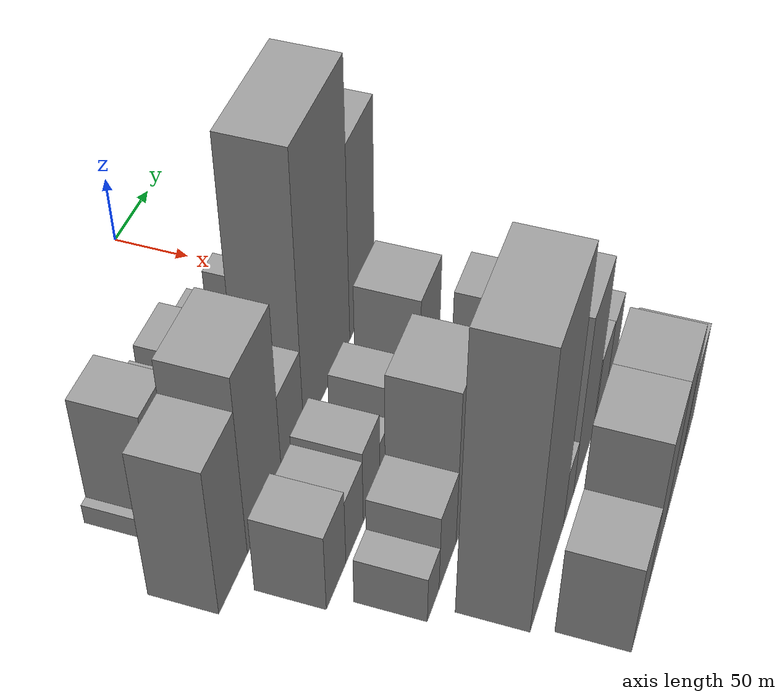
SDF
<sdf version="1.6">
 <world name="default">
  <model name="building_19">
   <static>1</static>
   <pose>100.0000 -210.8324 0 0.000000 0.000000 0.000000</pose>
   <link name="link">
    <pose>0 0 7.50 0 0 0</pose>
    <collision name="collision"><geometry><box><size>40.0000 6.0879 15.0000</size></box></geometry></collision>
    <visual name="visual">
     <cast_shadows>0</cast_shadows>
     <geometry><box><size>40.0000 6.0879 15.0000</size></box></geometry>
     <material>
      <script>
       <uri>model://grey_wall/materials/scripts</uri>
       <uri>model://grey_wall/materials/textures</uri>
       <name>vrc/grey_wall</name>
      </script>
     </material>
    </visual>
   </link>
  </model>
  <model name="building_20">
   <static>1</static>
   <pose>100.0000 -191.2011 0 0.000000 0.000000 0.000000</pose>
   <link name="link">
    <pose>0 0 46.50 0 0 0</pose>
    <collision name="collision"><geometry><box><size>40.0000 33.1748 93.0000</size></box></geometry></collision>
    <visual name="visual">
     <cast_shadows>0</cast_shadows>
     <geometry><box><size>40.0000 33.1748 93.0000</size></box></geometry>
     <material>
      <script>
       <uri>model://grey_wall/materials/scripts</uri>
       <uri>model://grey_wall/materials/textures</uri>
       <name>vrc/grey_wall</name>
      </script>
     </material>
    </visual>
   </link>
  </model>
  <model name="building_21">
   <static>1</static>
   <pose>100.0000 -155.3330 0 0.000000 0.000000 0.000000</pose>
   <link name="link">
    <pose>0 0 27.00 0 0 0</pose>
    <collision name="collision"><geometry><box><size>40.0000 30.5614 54.0000</size></box></geometry></collision>
    <visual name="visual">
     <cast_shadows>0</cast_shadows>
     <geometry><box><size>40.0000 30.5614 54.0000</size></box></geometry>
     <material>
      <script>
       <uri>model://grey_wall/materials/scripts</uri>
       <uri>model://grey_wall/materials/textures</uri>
       <name>vrc/grey_wall</name>
      </script>
     </material>
    </visual>
   </link>
  </model>
  <model name="building_22">
   <static>1</static>
   <pose>100.0000 -116.2851 0 0.000000 0.000000 0.000000</pose>
   <link name="link">
    <pose>0 0 30.00 0 0 0</pose>
    <collision name="collision"><geometry><box><size>40.0000 35.5343 60.0000</size></box></geometry></collision>
    <visual name="visual">
     <cast_shadows>0</cast_shadows>
     <geometry><box><size>40.0000 35.5343 60.0000</size></box></geometry>
     <material>
      <script>
       <uri>model://grey_wall/materials/scripts</uri>
       <uri>model://grey_wall/materials/textures</uri>
       <name>vrc/grey_wall</name>
      </script>
     </material>
    </visual>
   </link>
  </model>
  <model name="building_23">
   <static>1</static>
   <pose>100.0000 -89.9354 0 0.000000 0.000000 0.000000</pose>
   <link name="link">
    <pose>0 0 13.50 0 0 0</pose>
    <collision name="collision"><geometry><box><size>40.0000 11.1652 27.0000</size></box></geometry></collision>
    <visual name="visual">
     <cast_shadows>0</cast_shadows>
     <geometry><box><size>40.0000 11.1652 27.0000</size></box></geometry>
     <material>
      <script>
       <uri>model://grey_wall/materials/scripts</uri>
       <uri>model://grey_wall/materials/textures</uri>
       <name>vrc/grey_wall</name>
      </script>
     </material>
    </visual>
   </link>
  </model>
  <model name="building_24">
   <static>1</static>
   <pose>100.0000 -73.9870 0 0.000000 0.000000 0.000000</pose>
   <link name="link">
    <pose>0 0 19.50 0 0 0</pose>
    <collision name="collision"><geometry><box><size>40.0000 20.7316 39.0000</size></box></geometry></collision>
    <visual name="visual">
     <cast_shadows>0</cast_shadows>
     <geometry><box><size>40.0000 20.7316 39.0000</size></box></geometry>
     <material>
      <script>
       <uri>model://grey_wall/materials/scripts</uri>
       <uri>model://grey_wall/materials/textures</uri>
       <name>vrc/grey_wall</name>
      </script>
     </material>
    </visual>
   </link>
  </model>
  <model name="building_25">
   <static>1</static>
   <pose>100.0000 -50.6475 0 0.000000 0.000000 0.000000</pose>
   <link name="link">
    <pose>0 0 9.00 0 0 0</pose>
    <collision name="collision"><geometry><box><size>40.0000 7.9473 18.0000</size></box></geometry></collision>
    <visual name="visual">
     <cast_shadows>0</cast_shadows>
     <geometry><box><size>40.0000 7.9473 18.0000</size></box></geometry>
     <material>
      <script>
       <uri>model://grey_wall/materials/scripts</uri>
       <uri>model://grey_wall/materials/textures</uri>
       <name>vrc/grey_wall</name>
      </script>
     </material>
    </visual>
   </link>
  </model>
  <model name="building_26">
   <static>1</static>
   <pose>100.0000 -33.1180 0 0.000000 0.000000 0.000000</pose>
   <link name="link">
    <pose>0 0 16.50 0 0 0</pose>
    <collision name="collision"><geometry><box><size>40.0000 17.1118 33.0000</size></box></geometry></collision>
    <visual name="visual">
     <cast_shadows>0</cast_shadows>
     <geometry><box><size>40.0000 17.1118 33.0000</size></box></geometry>
     <material>
      <script>
       <uri>model://grey_wall/materials/scripts</uri>
       <uri>model://grey_wall/materials/textures</uri>
       <name>vrc/grey_wall</name>
      </script>
     </material>
    </visual>
   </link>
  </model>
  <model name="building_68">
   <static>1</static>
   <pose>152.0000 -226.4632 0 0.000000 0.000000 0.000000</pose>
   <link name="link">
    <pose>0 0 57.00 0 0 0</pose>
    <collision name="collision"><geometry><box><size>40.0000 40.4341 114.0000</size></box></geometry></collision>
    <visual name="visual">
     <cast_shadows>0</cast_shadows>
     <geometry><box><size>40.0000 40.4341 114.0000</size></box></geometry>
     <material>
      <script>
       <uri>model://grey_wall/materials/scripts</uri>
       <uri>model://grey_wall/materials/textures</uri>
       <name>vrc/grey_wall</name>
      </script>
     </material>
    </visual>
   </link>
  </model>
  <model name="building_69">
   <static>1</static>
   <pose>152.0000 -180.0314 0 0.000000 0.000000 0.000000</pose>
   <link name="link">
    <pose>0 0 69.00 0 0 0</pose>
    <collision name="collision"><geometry><box><size>40.0000 52.4296 138.0000</size></box></geometry></collision>
    <visual name="visual">
     <cast_shadows>0</cast_shadows>
     <geometry><box><size>40.0000 52.4296 138.0000</size></box></geometry>
     <material>
      <script>
       <uri>model://grey_wall/materials/scripts</uri>
       <uri>model://grey_wall/materials/textures</uri>
       <name>vrc/grey_wall</name>
      </script>
     </material>
    </visual>
   </link>
  </model>
  <model name="building_70">
   <static>1</static>
   <pose>152.0000 -136.0870 0 0.000000 0.000000 0.000000</pose>
   <link name="link">
    <pose>0 0 34.50 0 0 0</pose>
    <collision name="collision"><geometry><box><size>40.0000 35.4592 69.0000</size></box></geometry></collision>
    <visual name="visual">
     <cast_shadows>0</cast_shadows>
     <geometry><box><size>40.0000 35.4592 69.0000</size></box></geometry>
     <material>
      <script>
       <uri>model://grey_wall/materials/scripts</uri>
       <uri>model://grey_wall/materials/textures</uri>
       <name>vrc/grey_wall</name>
      </script>
     </material>
    </visual>
   </link>
  </model>
  <model name="building_71">
   <static>1</static>
   <pose>152.0000 -78.3478 0 0.000000 0.000000 0.000000</pose>
   <link name="link">
    <pose>0 0 105.00 0 0 0</pose>
    <collision name="collision"><geometry><box><size>40.0000 80.0192 210.0000</size></box></geometry></collision>
    <visual name="visual">
     <cast_shadows>0</cast_shadows>
     <geometry><box><size>40.0000 80.0192 210.0000</size></box></geometry>
     <material>
      <script>
       <uri>model://grey_wall/materials/scripts</uri>
       <uri>model://grey_wall/materials/textures</uri>
       <name>vrc/grey_wall</name>
      </script>
     </material>
    </visual>
   </link>
  </model>
  <model name="building_72">
   <static>1</static>
   <pose>152.0000 -14.9085 0 0.000000 0.000000 0.000000</pose>
   <link name="link">
    <pose>0 0 75.00 0 0 0</pose>
    <collision name="collision"><geometry><box><size>40.0000 46.8594 150.0000</size></box></geometry></collision>
    <visual name="visual">
     <cast_shadows>0</cast_shadows>
     <geometry><box><size>40.0000 46.8594 150.0000</size></box></geometry>
     <material>
      <script>
       <uri>model://grey_wall/materials/scripts</uri>
       <uri>model://grey_wall/materials/textures</uri>
       <name>vrc/grey_wall</name>
      </script>
     </material>
    </visual>
   </link>
  </model>
  <model name="building_112">
   <static>1</static>
   <pose>204.0000 -211.2936 0 0.000000 0.000000 0.000000</pose>
   <link name="link">
    <pose>0 0 30.00 0 0 0</pose>
    <collision name="collision"><geometry><box><size>40.0000 31.0286 60.0000</size></box></geometry></collision>
    <visual name="visual">
     <cast_shadows>0</cast_shadows>
     <geometry><box><size>40.0000 31.0286 60.0000</size></box></geometry>
     <material>
      <script>
       <uri>model://grey_wall/materials/scripts</uri>
       <uri>model://grey_wall/materials/textures</uri>
       <name>vrc/grey_wall</name>
      </script>
     </material>
    </visual>
   </link>
  </model>
  <model name="building_113">
   <static>1</static>
   <pose>204.0000 -181.3317 0 0.000000 0.000000 0.000000</pose>
   <link name="link">
    <pose>0 0 25.50 0 0 0</pose>
    <collision name="collision"><geometry><box><size>40.0000 28.8951 51.0000</size></box></geometry></collision>
    <visual name="visual">
     <cast_shadows>0</cast_shadows>
     <geometry><box><size>40.0000 28.8951 51.0000</size></box></geometry>
     <material>
      <script>
       <uri>model://grey_wall/materials/scripts</uri>
       <uri>model://grey_wall/materials/textures</uri>
       <name>vrc/grey_wall</name>
      </script>
     </material>
    </visual>
   </link>
  </model>
  <model name="building_114">
   <static>1</static>
   <pose>204.0000 -152.5142 0 0.000000 0.000000 0.000000</pose>
   <link name="link">
    <pose>0 0 28.50 0 0 0</pose>
    <collision name="collision"><geometry><box><size>40.0000 28.7399 57.0000</size></box></geometry></collision>
    <visual name="visual">
     <cast_shadows>0</cast_shadows>
     <geometry><box><size>40.0000 28.7399 57.0000</size></box></geometry>
     <material>
      <script>
       <uri>model://grey_wall/materials/scripts</uri>
       <uri>model://grey_wall/materials/textures</uri>
       <name>vrc/grey_wall</name>
      </script>
     </material>
    </visual>
   </link>
  </model>
  <model name="building_115">
   <static>1</static>
   <pose>204.0000 -128.4419 0 0.000000 0.000000 0.000000</pose>
   <link name="link">
    <pose>0 0 16.50 0 0 0</pose>
    <collision name="collision"><geometry><box><size>40.0000 19.4047 33.0000</size></box></geometry></collision>
    <visual name="visual">
     <cast_shadows>0</cast_shadows>
     <geometry><box><size>40.0000 19.4047 33.0000</size></box></geometry>
     <material>
      <script>
       <uri>model://grey_wall/materials/scripts</uri>
       <uri>model://grey_wall/materials/textures</uri>
       <name>vrc/grey_wall</name>
      </script>
     </material>
    </visual>
   </link>
  </model>
  <model name="building_116">
   <static>1</static>
   <pose>204.0000 -95.3311 0 0.000000 0.000000 0.000000</pose>
   <link name="link">
    <pose>0 0 22.50 0 0 0</pose>
    <collision name="collision"><geometry><box><size>40.0000 26.8168 45.0000</size></box></geometry></collision>
    <visual name="visual">
     <cast_shadows>0</cast_shadows>
     <geometry><box><size>40.0000 26.8168 45.0000</size></box></geometry>
     <material>
      <script>
       <uri>model://grey_wall/materials/scripts</uri>
       <uri>model://grey_wall/materials/textures</uri>
       <name>vrc/grey_wall</name>
      </script>
     </material>
    </visual>
   </link>
  </model>
  <model name="building_117">
   <static>1</static>
   <pose>204.0000 -76.4232 0 0.000000 0.000000 0.000000</pose>
   <link name="link">
    <pose>0 0 12.00 0 0 0</pose>
    <collision name="collision"><geometry><box><size>40.0000 10.9991 24.0000</size></box></geometry></collision>
    <visual name="visual">
     <cast_shadows>0</cast_shadows>
     <geometry><box><size>40.0000 10.9991 24.0000</size></box></geometry>
     <material>
      <script>
       <uri>model://grey_wall/materials/scripts</uri>
       <uri>model://grey_wall/materials/textures</uri>
       <name>vrc/grey_wall</name>
      </script>
     </material>
    </visual>
   </link>
  </model>
  <model name="building_118">
   <static>1</static>
   <pose>204.0000 -43.9648 0 0.000000 0.000000 0.000000</pose>
   <link name="link">
    <pose>0 0 36.00 0 0 0</pose>
    <collision name="collision"><geometry><box><size>40.0000 39.9176 72.0000</size></box></geometry></collision>
    <visual name="visual">
     <cast_shadows>0</cast_shadows>
     <geometry><box><size>40.0000 39.9176 72.0000</size></box></geometry>
     <material>
      <script>
       <uri>model://grey_wall/materials/scripts</uri>
       <uri>model://grey_wall/materials/textures</uri>
       <name>vrc/grey_wall</name>
      </script>
     </material>
    </visual>
   </link>
  </model>
  <model name="building_163">
   <static>1</static>
   <pose>256.0000 -207.3540 0 0.000000 0.000000 0.000000</pose>
   <link name="link">
    <pose>0 0 18.00 0 0 0</pose>
    <collision name="collision"><geometry><box><size>40.0000 20.7947 36.0000</size></box></geometry></collision>
    <visual name="visual">
     <cast_shadows>0</cast_shadows>
     <geometry><box><size>40.0000 20.7947 36.0000</size></box></geometry>
     <material>
      <script>
       <uri>model://grey_wall/materials/scripts</uri>
       <uri>model://grey_wall/materials/textures</uri>
       <name>vrc/grey_wall</name>
      </script>
     </material>
    </visual>
   </link>
  </model>
  <model name="building_164">
   <static>1</static>
   <pose>256.0000 -181.2437 0 0.000000 0.000000 0.000000</pose>
   <link name="link">
    <pose>0 0 30.00 0 0 0</pose>
    <collision name="collision"><geometry><box><size>40.0000 31.4259 60.0000</size></box></geometry></collision>
    <visual name="visual">
     <cast_shadows>0</cast_shadows>
     <geometry><box><size>40.0000 31.4259 60.0000</size></box></geometry>
     <material>
      <script>
       <uri>model://grey_wall/materials/scripts</uri>
       <uri>model://grey_wall/materials/textures</uri>
       <name>vrc/grey_wall</name>
      </script>
     </material>
    </visual>
   </link>
  </model>
  <model name="building_165">
   <static>1</static>
   <pose>256.0000 -143.0089 0 0.000000 0.000000 0.000000</pose>
   <link name="link">
    <pose>0 0 60.00 0 0 0</pose>
    <collision name="collision"><geometry><box><size>40.0000 45.0437 120.0000</size></box></geometry></collision>
    <visual name="visual">
     <cast_shadows>0</cast_shadows>
     <geometry><box><size>40.0000 45.0437 120.0000</size></box></geometry>
     <material>
      <script>
       <uri>model://grey_wall/materials/scripts</uri>
       <uri>model://grey_wall/materials/textures</uri>
       <name>vrc/grey_wall</name>
      </script>
     </material>
    </visual>
   </link>
  </model>
  <model name="building_166">
   <static>1</static>
   <pose>256.0000 -111.8336 0 0.000000 0.000000 0.000000</pose>
   <link name="link">
    <pose>0 0 16.50 0 0 0</pose>
    <collision name="collision"><geometry><box><size>40.0000 17.3068 33.0000</size></box></geometry></collision>
    <visual name="visual">
     <cast_shadows>0</cast_shadows>
     <geometry><box><size>40.0000 17.3068 33.0000</size></box></geometry>
     <material>
      <script>
       <uri>model://grey_wall/materials/scripts</uri>
       <uri>model://grey_wall/materials/textures</uri>
       <name>vrc/grey_wall</name>
      </script>
     </material>
    </visual>
   </link>
  </model>
  <model name="building_167">
   <static>1</static>
   <pose>256.0000 -88.0276 0 0.000000 0.000000 0.000000</pose>
   <link name="link">
    <pose>0 0 30.00 0 0 0</pose>
    <collision name="collision"><geometry><box><size>40.0000 30.3052 60.0000</size></box></geometry></collision>
    <visual name="visual">
     <cast_shadows>0</cast_shadows>
     <geometry><box><size>40.0000 30.3052 60.0000</size></box></geometry>
     <material>
      <script>
       <uri>model://grey_wall/materials/scripts</uri>
       <uri>model://grey_wall/materials/textures</uri>
       <name>vrc/grey_wall</name>
      </script>
     </material>
    </visual>
   </link>
  </model>
  <model name="building_168">
   <static>1</static>
   <pose>256.0000 -61.0045 0 0.000000 0.000000 0.000000</pose>
   <link name="link">
    <pose>0 0 22.50 0 0 0</pose>
    <collision name="collision"><geometry><box><size>40.0000 23.7411 45.0000</size></box></geometry></collision>
    <visual name="visual">
     <cast_shadows>0</cast_shadows>
     <geometry><box><size>40.0000 23.7411 45.0000</size></box></geometry>
     <material>
      <script>
       <uri>model://grey_wall/materials/scripts</uri>
       <uri>model://grey_wall/materials/textures</uri>
       <name>vrc/grey_wall</name>
      </script>
     </material>
    </visual>
   </link>
  </model>
  <model name="building_169">
   <static>1</static>
   <pose>256.0000 -21.3351 0 0.000000 0.000000 0.000000</pose>
   <link name="link">
    <pose>0 0 30.00 0 0 0</pose>
    <collision name="collision"><geometry><box><size>40.0000 35.5977 60.0000</size></box></geometry></collision>
    <visual name="visual">
     <cast_shadows>0</cast_shadows>
     <geometry><box><size>40.0000 35.5977 60.0000</size></box></geometry>
     <material>
      <script>
       <uri>model://grey_wall/materials/scripts</uri>
       <uri>model://grey_wall/materials/textures</uri>
       <name>vrc/grey_wall</name>
      </script>
     </material>
    </visual>
   </link>
  </model>
  <model name="building_214">
   <static>1</static>
   <pose>308.0000 -172.0735 0 0.000000 0.000000 0.000000</pose>
   <link name="link">
    <pose>0 0 105.00 0 0 0</pose>
    <collision name="collision"><geometry><box><size>40.0000 70.9552 210.0000</size></box></geometry></collision>
    <visual name="visual">
     <cast_shadows>0</cast_shadows>
     <geometry><box><size>40.0000 70.9552 210.0000</size></box></geometry>
     <material>
      <script>
       <uri>model://grey_wall/materials/scripts</uri>
       <uri>model://grey_wall/materials/textures</uri>
       <name>vrc/grey_wall</name>
      </script>
     </material>
    </visual>
   </link>
  </model>
  <model name="building_215">
   <static>1</static>
   <pose>308.0000 -125.0326 0 0.000000 0.000000 0.000000</pose>
   <link name="link">
    <pose>0 0 22.50 0 0 0</pose>
    <collision name="collision"><geometry><box><size>40.0000 23.1267 45.0000</size></box></geometry></collision>
    <visual name="visual">
     <cast_shadows>0</cast_shadows>
     <geometry><box><size>40.0000 23.1267 45.0000</size></box></geometry>
     <material>
      <script>
       <uri>model://grey_wall/materials/scripts</uri>
       <uri>model://grey_wall/materials/textures</uri>
       <name>vrc/grey_wall</name>
      </script>
     </material>
    </visual>
   </link>
  </model>
  <model name="building_216">
   <static>1</static>
   <pose>308.0000 -89.7167 0 0.000000 0.000000 0.000000</pose>
   <link name="link">
    <pose>0 0 69.00 0 0 0</pose>
    <collision name="collision"><geometry><box><size>40.0000 47.5051 138.0000</size></box></geometry></collision>
    <visual name="visual">
     <cast_shadows>0</cast_shadows>
     <geometry><box><size>40.0000 47.5051 138.0000</size></box></geometry>
     <material>
      <script>
       <uri>model://grey_wall/materials/scripts</uri>
       <uri>model://grey_wall/materials/textures</uri>
       <name>vrc/grey_wall</name>
      </script>
     </material>
    </visual>
   </link>
  </model>
  <model name="building_217">
   <static>1</static>
   <pose>308.0000 -46.1978 0 0.000000 0.000000 0.000000</pose>
   <link name="link">
    <pose>0 0 28.50 0 0 0</pose>
    <collision name="collision"><geometry><box><size>40.0000 31.5326 57.0000</size></box></geometry></collision>
    <visual name="visual">
     <cast_shadows>0</cast_shadows>
     <geometry><box><size>40.0000 31.5326 57.0000</size></box></geometry>
     <material>
      <script>
       <uri>model://grey_wall/materials/scripts</uri>
       <uri>model://grey_wall/materials/textures</uri>
       <name>vrc/grey_wall</name>
      </script>
     </material>
    </visual>
   </link>
  </model>
  <model name="building_218">
   <static>1</static>
   <pose>308.0000 -16.6651 0 0.000000 0.000000 0.000000</pose>
   <link name="link">
    <pose>0 0 27.00 0 0 0</pose>
    <collision name="collision"><geometry><box><size>40.0000 27.5329 54.0000</size></box></geometry></collision>
    <visual name="visual">
     <cast_shadows>0</cast_shadows>
     <geometry><box><size>40.0000 27.5329 54.0000</size></box></geometry>
     <material>
      <script>
       <uri>model://grey_wall/materials/scripts</uri>
       <uri>model://grey_wall/materials/textures</uri>
       <name>vrc/grey_wall</name>
      </script>
     </material>
    </visual>
   </link>
  </model>
  <model name="building_258">
   <static>1</static>
   <pose>360.0000 -183.2799 0 0.000000 0.000000 0.000000</pose>
   <link name="link">
    <pose>0 0 34.50 0 0 0</pose>
    <collision name="collision"><geometry><box><size>40.0000 40.0844 69.0000</size></box></geometry></collision>
    <visual name="visual">
     <cast_shadows>0</cast_shadows>
     <geometry><box><size>40.0000 40.0844 69.0000</size></box></geometry>
     <material>
      <script>
       <uri>model://grey_wall/materials/scripts</uri>
       <uri>model://grey_wall/materials/textures</uri>
       <name>vrc/grey_wall</name>
      </script>
     </material>
    </visual>
   </link>
  </model>
  <model name="building_259">
   <static>1</static>
   <pose>360.0000 -141.8558 0 0.000000 0.000000 0.000000</pose>
   <link name="link">
    <pose>0 0 58.50 0 0 0</pose>
    <collision name="collision"><geometry><box><size>40.0000 42.7638 117.0000</size></box></geometry></collision>
    <visual name="visual">
     <cast_shadows>0</cast_shadows>
     <geometry><box><size>40.0000 42.7638 117.0000</size></box></geometry>
     <material>
      <script>
       <uri>model://grey_wall/materials/scripts</uri>
       <uri>model://grey_wall/materials/textures</uri>
       <name>vrc/grey_wall</name>
      </script>
     </material>
    </visual>
   </link>
  </model>
  <model name="building_260">
   <static>1</static>
   <pose>360.0000 -99.5379 0 0.000000 0.000000 0.000000</pose>
   <link name="link">
    <pose>0 0 58.50 0 0 0</pose>
    <collision name="collision"><geometry><box><size>40.0000 41.8720 117.0000</size></box></geometry></collision>
    <visual name="visual">
     <cast_shadows>0</cast_shadows>
     <geometry><box><size>40.0000 41.8720 117.0000</size></box></geometry>
     <material>
      <script>
       <uri>model://grey_wall/materials/scripts</uri>
       <uri>model://grey_wall/materials/textures</uri>
       <name>vrc/grey_wall</name>
      </script>
     </material>
    </visual>
   </link>
  </model>
  <model name="building_261">
   <static>1</static>
   <pose>360.0000 -53.8948 0 0.000000 0.000000 0.000000</pose>
   <link name="link">
    <pose>0 0 37.50 0 0 0</pose>
    <collision name="collision"><geometry><box><size>40.0000 39.4143 75.0000</size></box></geometry></collision>
    <visual name="visual">
     <cast_shadows>0</cast_shadows>
     <geometry><box><size>40.0000 39.4143 75.0000</size></box></geometry>
     <material>
      <script>
       <uri>model://grey_wall/materials/scripts</uri>
       <uri>model://grey_wall/materials/textures</uri>
       <name>vrc/grey_wall</name>
      </script>
     </material>
    </visual>
   </link>
  </model>
 </world>
</sdf>
